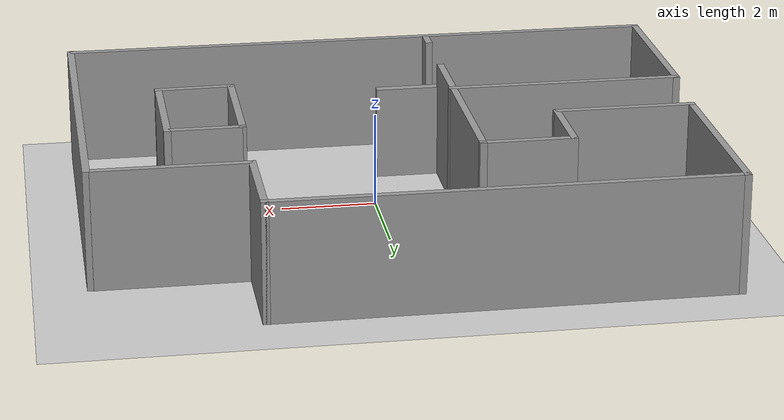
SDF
<sdf version="1.7">
 <world name="default">
  <light name="sun" type="directional">
   <pose>0 0 10 0 -0 0</pose>
   <diffuse>0.8 0.8 0.8 1</diffuse>
   <specular>0.2 0.2 0.2 1</specular>
   <attenuation>
    <range>1000</range>
    <constant>0.9</constant>
    <linear>0.01</linear>
    <quadratic>0.001</quadratic>
   </attenuation>
   <direction>-0.5 0.1 -0.9</direction>
   <spot><inner_angle>0</inner_angle><outer_angle>0</outer_angle><falloff>0</falloff></spot>
  </light>
  <model name="ground_plane">
   <static>1</static>
   <link name="link">
    <collision name="collision">
     <geometry><plane><normal>0 0 1</normal><size>100 100</size></plane></geometry>
     <surface>
      <contact><collide_bitmask>65535</collide_bitmask></contact>
      <friction><ode><mu>100</mu><mu2>50</mu2></ode></friction>
     </surface>
    </collision>
    <visual name="visual">
     <cast_shadows>0</cast_shadows>
     <geometry><plane><normal>0 0 1</normal><size>100 100</size></plane></geometry>
     <material>
      <script><uri>file://media/materials/scripts/gazebo.material</uri><name>Gazebo/Grey</name></script>
     </material>
    </visual>
   </link>
  </model>
  <gravity>0 0 -9.8</gravity>
  <magnetic_field>6e-06 2.3e-05 -4.2e-05</magnetic_field>
  <atmosphere type="adiabatic"/>
  <physics type="ode">
   <max_step_size>0.001</max_step_size>
   <real_time_factor>1</real_time_factor>
   <real_time_update_rate>1000</real_time_update_rate>
  </physics>
  <scene><ambient>0.4 0.4 0.4 1</ambient><background>0.7 0.7 0.7 1</background><shadows>1</shadows></scene>
  <spherical_coordinates>
   <surface_model>EARTH_WGS84</surface_model>
   <latitude_deg>0</latitude_deg>
   <longitude_deg>0</longitude_deg>
   <elevation>0</elevation>
   <heading_deg>0</heading_deg>
  </spherical_coordinates>
  <model name="building1">
   <pose>-0.153713 1.02349 0 0 -0 0</pose>
   <link name="Door_0">
    <collision name="Door_0_Collision">
     <geometry><box><size>1.38273 0.2 2</size></box></geometry>
     <pose>0 0 1 0 -0 0</pose>
    </collision>
    <visual name="Door_0_Visual">
     <pose>0 0 1 0 -0 0</pose>
     <geometry><box><size>1.38273 0.2 2</size></box></geometry>
     <material>
      <script><uri>file://media/materials/scripts/gazebo.material</uri><name>Gazebo/Grey</name></script>
     </material>
    </visual>
    <pose>-0.814434 -2.71687 0 0 0 -0.001538</pose>
   </link>
   <link name="Wall_12">
    <collision name="Wall_12_Collision">
     <geometry><box><size>0.5 0.15 2.5</size></box></geometry>
     <pose>0 0 1.25 0 -0 0</pose>
    </collision>
    <visual name="Wall_12_Visual">
     <pose>0 0 1.25 0 -0 0</pose>
     <geometry><box><size>0.5 0.15 2.5</size></box></geometry>
     <material>
      <script><uri>file://media/materials/scripts/gazebo.material</uri><name>Gazebo/Grey</name></script>
      <ambient>1 1 1 1</ambient>
     </material>
     <meta><layer>0</layer></meta>
    </visual>
    <pose>-1.53675 -4.43479 0 0 -0 1.5708</pose>
   </link>
   <link name="Wall_15">
    <collision name="Wall_15_Collision">
     <geometry><box><size>5 0.15 2.5</size></box></geometry>
     <pose>0 0 1.25 0 -0 0</pose>
    </collision>
    <visual name="Wall_15_Visual">
     <pose>0 0 1.25 0 -0 0</pose>
     <geometry><box><size>5 0.15 2.5</size></box></geometry>
     <material>
      <script><uri>file://media/materials/scripts/gazebo.material</uri><name>Gazebo/Grey</name></script>
      <ambient>1 1 1 1</ambient>
     </material>
     <meta><layer>0</layer></meta>
    </visual>
    <pose>-1.52525 -0.193596 0 0 -0 1.5708</pose>
   </link>
   <link name="Wall_16">
    <collision name="Wall_16_Collision">
     <geometry><box><size>2 0.15 2.5</size></box></geometry>
     <pose>0 0 1.25 0 -0 0</pose>
    </collision>
    <visual name="Wall_16_Visual">
     <pose>0 0 1.25 0 -0 0</pose>
     <geometry><box><size>2 0.15 2.5</size></box></geometry>
     <material>
      <script><uri>file://media/materials/scripts/gazebo.material</uri><name>Gazebo/Grey</name></script>
      <ambient>1 1 1 1</ambient>
     </material>
     <meta><layer>0</layer></meta>
    </visual>
    <pose>-2.45025 2.2314 0 0 -0 3.14159</pose>
   </link>
   <link name="Wall_17">
    <collision name="Wall_17_Collision">
     <geometry><box><size>1.75 0.15 2.5</size></box></geometry>
     <pose>0 0 1.25 0 -0 0</pose>
    </collision>
    <visual name="Wall_17_Visual">
     <pose>0 0 1.25 0 -0 0</pose>
     <geometry><box><size>1.75 0.15 2.5</size></box></geometry>
     <material>
      <script><uri>file://media/materials/scripts/gazebo.material</uri><name>Gazebo/Grey</name></script>
      <ambient>1 1 1 1</ambient>
     </material>
     <meta><layer>0</layer></meta>
    </visual>
    <pose>-3.37525 1.4314 0 0 -0 -1.5708</pose>
   </link>
   <link name="Wall_18">
    <collision name="Wall_18_Collision">
     <geometry><box><size>3 0.15 2.5</size></box></geometry>
     <pose>0 0 1.25 0 -0 0</pose>
    </collision>
    <visual name="Wall_18_Visual">
     <pose>0 0 1.25 0 -0 0</pose>
     <geometry><box><size>3 0.15 2.5</size></box></geometry>
     <material>
      <script><uri>file://media/materials/scripts/gazebo.material</uri><name>Gazebo/Grey</name></script>
      <ambient>1 1 1 1</ambient>
     </material>
     <meta><layer>0</layer></meta>
    </visual>
    <pose>-4.80025 0.631404 0 0 -0 3.14159</pose>
   </link>
   <link name="Wall_19">
    <collision name="Wall_19_Collision">
     <geometry><box><size>4.25 0.15 2.5</size></box></geometry>
     <pose>0 0 1.25 0 -0 0</pose>
    </collision>
    <visual name="Wall_19_Visual">
     <pose>0 0 1.25 0 -0 0</pose>
     <geometry><box><size>4.25 0.15 2.5</size></box></geometry>
     <material>
      <script><uri>file://media/materials/scripts/gazebo.material</uri><name>Gazebo/Grey</name></script>
      <ambient>1 1 1 1</ambient>
     </material>
     <meta><layer>0</layer></meta>
    </visual>
    <pose>-6.22525 2.6814 0 0 -0 1.5708</pose>
   </link>
   <link name="Wall_20">
    <collision name="Wall_20_Collision">
     <geometry><box><size>9.5 0.15 2.5</size></box></geometry>
     <pose>0 0 1.25 0 -0 0</pose>
    </collision>
    <visual name="Wall_20_Visual">
     <pose>0 0 1.25 0 -0 0</pose>
     <geometry><box><size>9.5 0.15 2.5</size></box></geometry>
     <material>
      <script><uri>file://media/materials/scripts/gazebo.material</uri><name>Gazebo/Grey</name></script>
      <ambient>1 1 1 1</ambient>
     </material>
     <meta><layer>0</layer></meta>
    </visual>
    <pose>-1.55025 4.7314 0 0 -0 0</pose>
   </link>
   <link name="Wall_21">
    <collision name="Wall_21_Collision">
     <geometry><box><size>2.25 0.15 2.5</size></box></geometry>
     <pose>0 0 1.25 0 -0 0</pose>
    </collision>
    <visual name="Wall_21_Visual">
     <pose>0 0 1.25 0 -0 0</pose>
     <geometry><box><size>2.25 0.15 2.5</size></box></geometry>
     <material>
      <script><uri>file://media/materials/scripts/gazebo.material</uri><name>Gazebo/Grey</name></script>
      <ambient>1 1 1 1</ambient>
     </material>
     <meta><layer>0</layer></meta>
    </visual>
    <pose>3.12475 3.6814 0 0 -0 -1.5708</pose>
   </link>
   <link name="Wall_22">
    <collision name="Wall_22_Collision">
     <geometry><box><size>3.25 0.15 2.5</size></box></geometry>
     <pose>0 0 1.25 0 -0 0</pose>
    </collision>
    <visual name="Wall_22_Visual">
     <pose>0 0 1.25 0 -0 0</pose>
     <geometry><box><size>3.25 0.15 2.5</size></box></geometry>
     <material>
      <script><uri>file://media/materials/scripts/gazebo.material</uri><name>Gazebo/Grey</name></script>
      <ambient>1 1 1 1</ambient>
     </material>
     <meta><layer>0</layer></meta>
    </visual>
    <pose>4.67475 2.6314 0 0 -0 0</pose>
   </link>
   <link name="Wall_26">
    <collision name="Wall_26_Collision">
     <geometry><box><size>2.69218 0.15 2.5</size></box></geometry>
     <pose>0 0 1.25 0 -0 0</pose>
    </collision>
    <visual name="Wall_26_Visual">
     <pose>0 0 1.25 0 -0 0</pose>
     <geometry><box><size>2.69218 0.15 2.5</size></box></geometry>
     <material>
      <script><uri>file://media/materials/scripts/gazebo.material</uri><name>Gazebo/Grey</name></script>
      <ambient>1 1 1 1</ambient>
     </material>
     <meta><layer>0</layer></meta>
    </visual>
    <pose>3.10427 -0.695379 0 0 -0 -1.57528</pose>
   </link>
   <link name="Wall_27">
    <collision name="Wall_27_Collision">
     <geometry><box><size>1.65912 0.15 2.5</size></box></geometry>
     <pose>0 0 1.25 0 -0 0</pose>
    </collision>
    <visual name="Wall_27_Visual">
     <pose>0 0 1.25 0 -0 0</pose>
     <geometry><box><size>1.65912 0.15 2.5</size></box></geometry>
     <material>
      <script><uri>file://media/materials/scripts/gazebo.material</uri><name>Gazebo/Grey</name></script>
      <ambient>1 1 1 1</ambient>
     </material>
     <meta><layer>0</layer></meta>
    </visual>
    <pose>3.87912 -1.95125 0 0 -0 0.020169</pose>
   </link>
   <link name="Wall_28">
    <collision name="Wall_28_Collision">
     <geometry><box><size>2.65875 0.15 2.5</size></box></geometry>
     <pose>0 0 1.25 0 -0 0</pose>
    </collision>
    <visual name="Wall_28_Visual">
     <pose>0 0 1.25 0 -0 0</pose>
     <geometry><box><size>2.65875 0.15 2.5</size></box></geometry>
     <material>
      <script><uri>file://media/materials/scripts/gazebo.material</uri><name>Gazebo/Grey</name></script>
      <ambient>1 1 1 1</ambient>
     </material>
     <meta><layer>0</layer></meta>
    </visual>
    <pose>4.63307 -0.666457 0 0 -0 1.5708</pose>
   </link>
   <link name="Wall_29">
    <collision name="Wall_29_Collision">
     <geometry><box><size>1.67335 0.15 2.5</size></box></geometry>
     <pose>0 0 1.25 0 -0 0</pose>
    </collision>
    <visual name="Wall_29_Visual">
     <pose>0 0 1.25 0 -0 0</pose>
     <geometry><box><size>1.67335 0.15 2.5</size></box></geometry>
     <material>
      <script><uri>file://media/materials/scripts/gazebo.material</uri><name>Gazebo/Grey</name></script>
      <ambient>1 1 1 1</ambient>
     </material>
     <meta><layer>0</layer></meta>
    </visual>
    <pose>3.87152 0.574204 0 0 -0 3.13963</pose>
   </link>
   <link name="Wall_4">
    <collision name="Wall_4_Collision">
     <geometry><box><size>7.5 0.15 2.5</size></box></geometry>
     <pose>0 0 1.25 0 -0 0</pose>
    </collision>
    <visual name="Wall_4_Visual">
     <pose>0 0 1.25 0 -0 0</pose>
     <geometry><box><size>7.5 0.15 2.5</size></box></geometry>
     <material>
      <script><uri>file://media/materials/scripts/gazebo.material</uri><name>Gazebo/Grey</name></script>
      <ambient>1 1 1 1</ambient>
     </material>
     <meta><layer>0</layer></meta>
    </visual>
    <pose>6.35358 -1.0564 0 0 -0 1.5708</pose>
   </link>
   <link name="Wall_6">
    <collision name="Wall_6_Collision">
     <geometry><box><size>12.8439 0.15 2.5</size></box></geometry>
     <pose>0 0 1.25 0 -0 0</pose>
    </collision>
    <visual name="Wall_6_Visual">
     <pose>0 0 1.25 0 -0 0</pose>
     <geometry><box><size>12.8439 0.15 2.5</size></box></geometry>
     <material>
      <script><uri>file://media/materials/scripts/gazebo.material</uri><name>Gazebo/Grey</name></script>
      <ambient>1 1 1 1</ambient>
     </material>
     <meta><layer>0</layer></meta>
    </visual>
    <pose>-0.006601 -4.71632 0 0 -0 3.1413</pose>
   </link>
   <link name="Wall_8">
    <collision name="Wall_8_Collision">
     <geometry><box><size>3.75 0.15 2.5</size></box></geometry>
     <pose>0 0 1.25 0 -0 0</pose>
    </collision>
    <visual name="Wall_8_Visual">
     <pose>0 0 1.25 0 -0 0</pose>
     <geometry><box><size>3.75 0.15 2.5</size></box></geometry>
     <material>
      <script><uri>file://media/materials/scripts/gazebo.material</uri><name>Gazebo/Grey</name></script>
      <ambient>1 1 1 1</ambient>
     </material>
     <meta><layer>0</layer></meta>
    </visual>
    <pose>-6.35356 -2.91447 0 0 -0 1.5708</pose>
   </link>
   <link name="Wall_9">
    <collision name="Wall_9_Collision">
     <geometry><box><size>5 0.15 2.5</size></box></geometry>
     <pose>0 0 1.25 0 -0 0</pose>
    </collision>
    <visual name="Wall_9_Visual">
     <pose>0 0 1.25 0 -0 0</pose>
     <geometry><box><size>5 0.15 2.5</size></box></geometry>
     <material>
      <script><uri>file://media/materials/scripts/gazebo.material</uri><name>Gazebo/Grey</name></script>
      <ambient>1 1 1 1</ambient>
     </material>
     <meta><layer>0</layer></meta>
    </visual>
    <pose>-3.92856 -1.11447 0 0 -0 0</pose>
   </link>
   <static>1</static>
  </model>
 </world>
</sdf>
